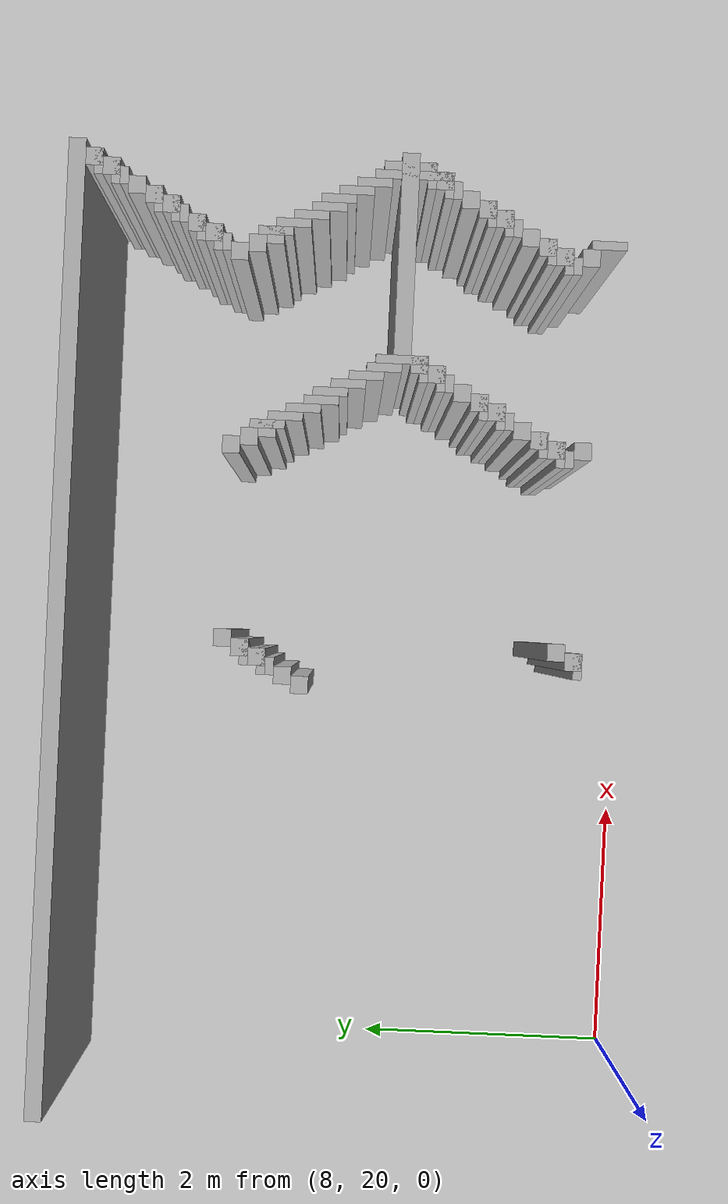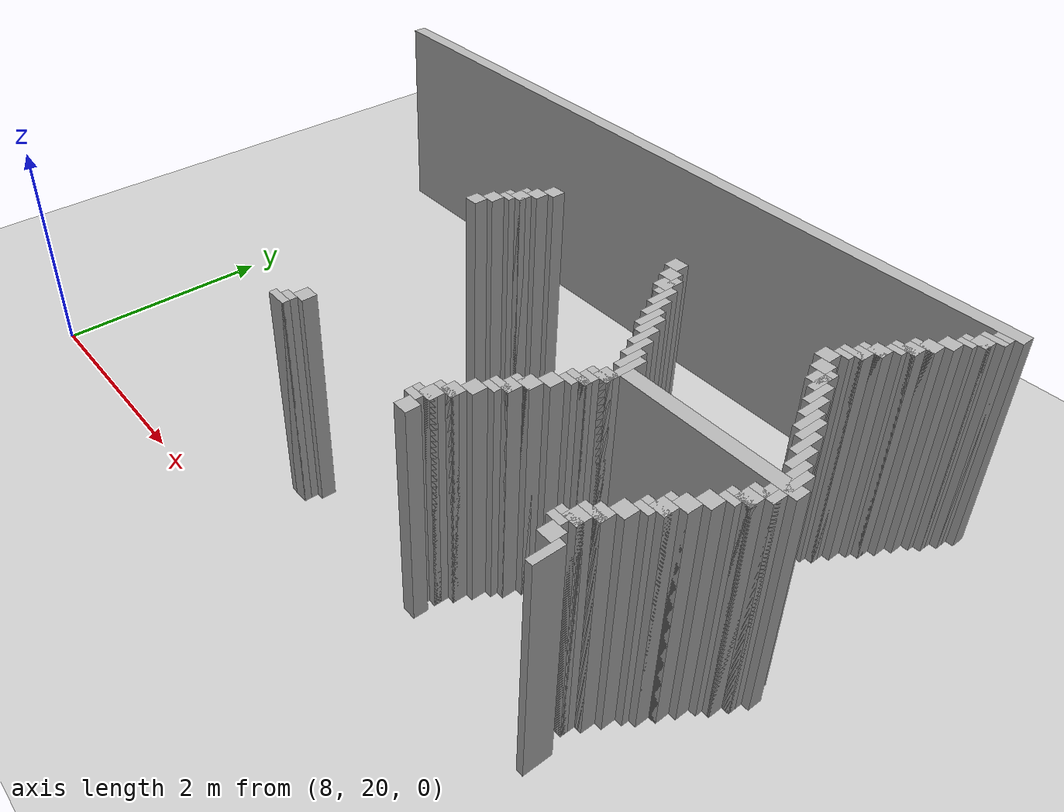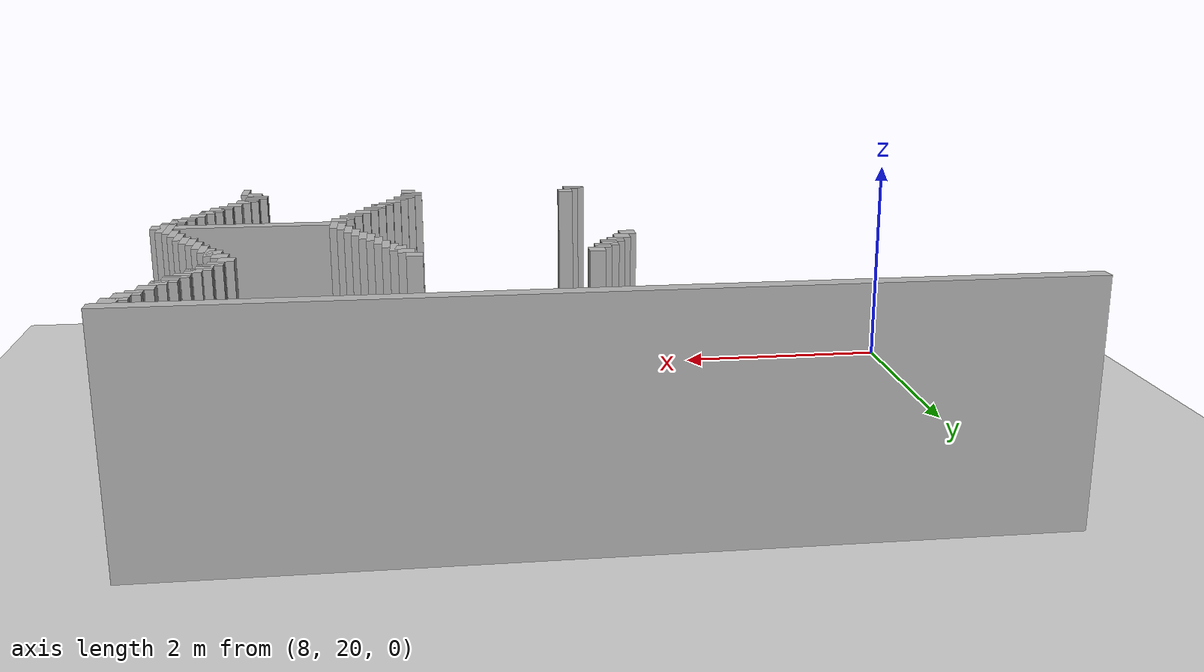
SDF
<sdf version="1.6">
 <world name="slam_world">
  <model name="ground_plane">
   <static>true</static>
   <link name="link">
    <collision name="collision">
     <geometry><plane><normal>0 0 1</normal><size>100 100</size></plane></geometry>
    </collision>
    <visual name="visual">
     <geometry><plane><normal>0 0 1</normal><size>100 100</size></plane></geometry>
     <material>
      <ambient>0.8 0.8 0.8 1</ambient>
      <diffuse>0.8 0.8 0.8 1</diffuse>
      <specular>0.8 0.8 0.8 1</specular>
     </material>
    </visual>
   </link>
  </model>
  <model name="wall_1">
   <static>true</static>
   <pose>11.361702127659573 24.446808510638295 1.0 0 0 0</pose>
   <link name="link">
    <collision name="collision">
     <geometry><box><size>7.148936170212766 0.1276595744680851 2.0</size></box></geometry>
    </collision>
    <visual name="visual">
     <geometry><box><size>7.148936170212766 0.1276595744680851 2.0</size></box></geometry>
     <material><ambient>0.5 0.5 0.5 1</ambient><diffuse>0.7 0.7 0.7 1</diffuse></material>
    </visual>
   </link>
  </model>
  <model name="wall_7">
   <static>true</static>
   <pose>14.808510638297872 24.319148936170212 1.0 0 0 0</pose>
   <link name="link">
    <collision name="collision">
     <geometry><box><size>0.1276595744680851 0.1276595744680851 2.0</size></box></geometry>
    </collision>
    <visual name="visual">
     <geometry><box><size>0.1276595744680851 0.1276595744680851 2.0</size></box></geometry>
     <material><ambient>0.5 0.5 0.5 1</ambient><diffuse>0.7 0.7 0.7 1</diffuse></material>
    </visual>
   </link>
  </model>
  <model name="wall_13">
   <static>true</static>
   <pose>14.77659574468085 24.28723404255319 1.0 0 0 0</pose>
   <link name="link">
    <collision name="collision">
     <geometry><box><size>0.19148936170212766 0.06382978723404255 2.0</size></box></geometry>
    </collision>
    <visual name="visual">
     <geometry><box><size>0.19148936170212766 0.06382978723404255 2.0</size></box></geometry>
     <material><ambient>0.5 0.5 0.5 1</ambient><diffuse>0.7 0.7 0.7 1</diffuse></material>
    </visual>
   </link>
  </model>
  <model name="wall_19">
   <static>true</static>
   <pose>14.744680851063828 24.191489361702125 1.0 0 0 0</pose>
   <link name="link">
    <collision name="collision">
     <geometry><box><size>0.1276595744680851 0.1276595744680851 2.0</size></box></geometry>
    </collision>
    <visual name="visual">
     <geometry><box><size>0.1276595744680851 0.1276595744680851 2.0</size></box></geometry>
     <material><ambient>0.5 0.5 0.5 1</ambient><diffuse>0.7 0.7 0.7 1</diffuse></material>
    </visual>
   </link>
  </model>
  <model name="wall_25">
   <static>true</static>
   <pose>14.712765957446807 24.159574468085104 1.0 0 0 0</pose>
   <link name="link">
    <collision name="collision">
     <geometry><box><size>0.19148936170212766 0.06382978723404255 2.0</size></box></geometry>
    </collision>
    <visual name="visual">
     <geometry><box><size>0.19148936170212766 0.06382978723404255 2.0</size></box></geometry>
     <material><ambient>0.5 0.5 0.5 1</ambient><diffuse>0.7 0.7 0.7 1</diffuse></material>
    </visual>
   </link>
  </model>
  <model name="wall_31">
   <static>true</static>
   <pose>14.680851063829786 24.095744680851062 1.0 0 0 0</pose>
   <link name="link">
    <collision name="collision">
     <geometry><box><size>0.1276595744680851 0.06382978723404255 2.0</size></box></geometry>
    </collision>
    <visual name="visual">
     <geometry><box><size>0.1276595744680851 0.06382978723404255 2.0</size></box></geometry>
     <material><ambient>0.5 0.5 0.5 1</ambient><diffuse>0.7 0.7 0.7 1</diffuse></material>
    </visual>
   </link>
  </model>
  <model name="wall_37">
   <static>true</static>
   <pose>14.617021276595743 23.999999999999996 1.0 0 0 0</pose>
   <link name="link">
    <collision name="collision">
     <geometry><box><size>0.1276595744680851 0.1276595744680851 2.0</size></box></geometry>
    </collision>
    <visual name="visual">
     <geometry><box><size>0.1276595744680851 0.1276595744680851 2.0</size></box></geometry>
     <material><ambient>0.5 0.5 0.5 1</ambient><diffuse>0.7 0.7 0.7 1</diffuse></material>
    </visual>
   </link>
  </model>
  <model name="wall_43">
   <static>true</static>
   <pose>14.553191489361701 23.872340425531913 1.0 0 0 0</pose>
   <link name="link">
    <collision name="collision">
     <geometry><box><size>0.1276595744680851 0.1276595744680851 2.0</size></box></geometry>
    </collision>
    <visual name="visual">
     <geometry><box><size>0.1276595744680851 0.1276595744680851 2.0</size></box></geometry>
     <material><ambient>0.5 0.5 0.5 1</ambient><diffuse>0.7 0.7 0.7 1</diffuse></material>
    </visual>
   </link>
  </model>
  <model name="wall_49">
   <static>true</static>
   <pose>14.52127659574468 23.840425531914892 1.0 0 0 0</pose>
   <link name="link">
    <collision name="collision">
     <geometry><box><size>0.19148936170212766 0.06382978723404255 2.0</size></box></geometry>
    </collision>
    <visual name="visual">
     <geometry><box><size>0.19148936170212766 0.06382978723404255 2.0</size></box></geometry>
     <material><ambient>0.5 0.5 0.5 1</ambient><diffuse>0.7 0.7 0.7 1</diffuse></material>
    </visual>
   </link>
  </model>
  <model name="wall_55">
   <static>true</static>
   <pose>14.489361702127658 23.744680851063826 1.0 0 0 0</pose>
   <link name="link">
    <collision name="collision">
     <geometry><box><size>0.1276595744680851 0.1276595744680851 2.0</size></box></geometry>
    </collision>
    <visual name="visual">
     <geometry><box><size>0.1276595744680851 0.1276595744680851 2.0</size></box></geometry>
     <material><ambient>0.5 0.5 0.5 1</ambient><diffuse>0.7 0.7 0.7 1</diffuse></material>
    </visual>
   </link>
  </model>
  <model name="wall_61">
   <static>true</static>
   <pose>14.457446808510637 23.712765957446805 1.0 0 0 0</pose>
   <link name="link">
    <collision name="collision">
     <geometry><box><size>0.19148936170212766 0.06382978723404255 2.0</size></box></geometry>
    </collision>
    <visual name="visual">
     <geometry><box><size>0.19148936170212766 0.06382978723404255 2.0</size></box></geometry>
     <material><ambient>0.5 0.5 0.5 1</ambient><diffuse>0.7 0.7 0.7 1</diffuse></material>
    </visual>
   </link>
  </model>
  <model name="wall_67">
   <static>true</static>
   <pose>14.425531914893616 23.648936170212764 1.0 0 0 0</pose>
   <link name="link">
    <collision name="collision">
     <geometry><box><size>0.1276595744680851 0.06382978723404255 2.0</size></box></geometry>
    </collision>
    <visual name="visual">
     <geometry><box><size>0.1276595744680851 0.06382978723404255 2.0</size></box></geometry>
     <material><ambient>0.5 0.5 0.5 1</ambient><diffuse>0.7 0.7 0.7 1</diffuse></material>
    </visual>
   </link>
  </model>
  <model name="wall_73">
   <static>true</static>
   <pose>14.361702127659573 23.5531914893617 1.0 0 0 0</pose>
   <link name="link">
    <collision name="collision">
     <geometry><box><size>0.1276595744680851 0.1276595744680851 2.0</size></box></geometry>
    </collision>
    <visual name="visual">
     <geometry><box><size>0.1276595744680851 0.1276595744680851 2.0</size></box></geometry>
     <material><ambient>0.5 0.5 0.5 1</ambient><diffuse>0.7 0.7 0.7 1</diffuse></material>
    </visual>
   </link>
  </model>
  <model name="wall_79">
   <static>true</static>
   <pose>14.329787234042552 23.52127659574468 1.0 0 0 0</pose>
   <link name="link">
    <collision name="collision">
     <geometry><box><size>0.19148936170212766 0.06382978723404255 2.0</size></box></geometry>
    </collision>
    <visual name="visual">
     <geometry><box><size>0.19148936170212766 0.06382978723404255 2.0</size></box></geometry>
     <material><ambient>0.5 0.5 0.5 1</ambient><diffuse>0.7 0.7 0.7 1</diffuse></material>
    </visual>
   </link>
  </model>
  <model name="wall_85">
   <static>true</static>
   <pose>14.297872340425531 23.425531914893615 1.0 0 0 0</pose>
   <link name="link">
    <collision name="collision">
     <geometry><box><size>0.1276595744680851 0.1276595744680851 2.0</size></box></geometry>
    </collision>
    <visual name="visual">
     <geometry><box><size>0.1276595744680851 0.1276595744680851 2.0</size></box></geometry>
     <material><ambient>0.5 0.5 0.5 1</ambient><diffuse>0.7 0.7 0.7 1</diffuse></material>
    </visual>
   </link>
  </model>
  <model name="wall_91">
   <static>true</static>
   <pose>14.265957446808509 23.393617021276594 1.0 0 0 0</pose>
   <link name="link">
    <collision name="collision">
     <geometry><box><size>0.19148936170212766 0.06382978723404255 2.0</size></box></geometry>
    </collision>
    <visual name="visual">
     <geometry><box><size>0.19148936170212766 0.06382978723404255 2.0</size></box></geometry>
     <material><ambient>0.5 0.5 0.5 1</ambient><diffuse>0.7 0.7 0.7 1</diffuse></material>
    </visual>
   </link>
  </model>
  <model name="wall_97">
   <static>true</static>
   <pose>14.234042553191488 23.329787234042552 1.0 0 0 0</pose>
   <link name="link">
    <collision name="collision">
     <geometry><box><size>0.1276595744680851 0.06382978723404255 2.0</size></box></geometry>
    </collision>
    <visual name="visual">
     <geometry><box><size>0.1276595744680851 0.06382978723404255 2.0</size></box></geometry>
     <material><ambient>0.5 0.5 0.5 1</ambient><diffuse>0.7 0.7 0.7 1</diffuse></material>
    </visual>
   </link>
  </model>
  <model name="wall_104">
   <static>true</static>
   <pose>11.361702127659573 23.234042553191486 1.0 0 0 0</pose>
   <link name="link">
    <collision name="collision">
     <geometry><box><size>0.1276595744680851 0.1276595744680851 2.0</size></box></geometry>
    </collision>
    <visual name="visual">
     <geometry><box><size>0.1276595744680851 0.1276595744680851 2.0</size></box></geometry>
     <material><ambient>0.5 0.5 0.5 1</ambient><diffuse>0.7 0.7 0.7 1</diffuse></material>
    </visual>
   </link>
  </model>
  <model name="wall_105">
   <static>true</static>
   <pose>12.76595744680851 23.234042553191486 1.0 0 0 0</pose>
   <link name="link">
    <collision name="collision">
     <geometry><box><size>0.1276595744680851 0.1276595744680851 2.0</size></box></geometry>
    </collision>
    <visual name="visual">
     <geometry><box><size>0.1276595744680851 0.1276595744680851 2.0</size></box></geometry>
     <material><ambient>0.5 0.5 0.5 1</ambient><diffuse>0.7 0.7 0.7 1</diffuse></material>
    </visual>
   </link>
  </model>
  <model name="wall_106">
   <static>true</static>
   <pose>14.170212765957446 23.234042553191486 1.0 0 0 0</pose>
   <link name="link">
    <collision name="collision">
     <geometry><box><size>0.1276595744680851 0.1276595744680851 2.0</size></box></geometry>
    </collision>
    <visual name="visual">
     <geometry><box><size>0.1276595744680851 0.1276595744680851 2.0</size></box></geometry>
     <material><ambient>0.5 0.5 0.5 1</ambient><diffuse>0.7 0.7 0.7 1</diffuse></material>
    </visual>
   </link>
  </model>
  <model name="wall_111">
   <static>true</static>
   <pose>11.297872340425531 23.106382978723403 1.0 0 0 0</pose>
   <link name="link">
    <collision name="collision">
     <geometry><box><size>0.1276595744680851 0.1276595744680851 2.0</size></box></geometry>
    </collision>
    <visual name="visual">
     <geometry><box><size>0.1276595744680851 0.1276595744680851 2.0</size></box></geometry>
     <material><ambient>0.5 0.5 0.5 1</ambient><diffuse>0.7 0.7 0.7 1</diffuse></material>
    </visual>
   </link>
  </model>
  <model name="wall_112">
   <static>true</static>
   <pose>12.829787234042552 23.106382978723403 1.0 0 0 0</pose>
   <link name="link">
    <collision name="collision">
     <geometry><box><size>0.1276595744680851 0.1276595744680851 2.0</size></box></geometry>
    </collision>
    <visual name="visual">
     <geometry><box><size>0.1276595744680851 0.1276595744680851 2.0</size></box></geometry>
     <material><ambient>0.5 0.5 0.5 1</ambient><diffuse>0.7 0.7 0.7 1</diffuse></material>
    </visual>
   </link>
  </model>
  <model name="wall_113">
   <static>true</static>
   <pose>14.234042553191488 23.106382978723403 1.0 0 0 0</pose>
   <link name="link">
    <collision name="collision">
     <geometry><box><size>0.1276595744680851 0.1276595744680851 2.0</size></box></geometry>
    </collision>
    <visual name="visual">
     <geometry><box><size>0.1276595744680851 0.1276595744680851 2.0</size></box></geometry>
     <material><ambient>0.5 0.5 0.5 1</ambient><diffuse>0.7 0.7 0.7 1</diffuse></material>
    </visual>
   </link>
  </model>
  <model name="wall_118">
   <static>true</static>
   <pose>11.26595744680851 23.074468085106382 1.0 0 0 0</pose>
   <link name="link">
    <collision name="collision">
     <geometry><box><size>0.19148936170212766 0.06382978723404255 2.0</size></box></geometry>
    </collision>
    <visual name="visual">
     <geometry><box><size>0.19148936170212766 0.06382978723404255 2.0</size></box></geometry>
     <material><ambient>0.5 0.5 0.5 1</ambient><diffuse>0.7 0.7 0.7 1</diffuse></material>
    </visual>
   </link>
  </model>
  <model name="wall_119">
   <static>true</static>
   <pose>12.925531914893616 22.978723404255316 1.0 0 0 0</pose>
   <link name="link">
    <collision name="collision">
     <geometry><box><size>0.06382978723404255 0.2553191489361702 2.0</size></box></geometry>
    </collision>
    <visual name="visual">
     <geometry><box><size>0.06382978723404255 0.2553191489361702 2.0</size></box></geometry>
     <material><ambient>0.5 0.5 0.5 1</ambient><diffuse>0.7 0.7 0.7 1</diffuse></material>
    </visual>
   </link>
  </model>
  <model name="wall_120">
   <static>true</static>
   <pose>14.329787234042552 22.978723404255316 1.0 0 0 0</pose>
   <link name="link">
    <collision name="collision">
     <geometry><box><size>0.06382978723404255 0.2553191489361702 2.0</size></box></geometry>
    </collision>
    <visual name="visual">
     <geometry><box><size>0.06382978723404255 0.2553191489361702 2.0</size></box></geometry>
     <material><ambient>0.5 0.5 0.5 1</ambient><diffuse>0.7 0.7 0.7 1</diffuse></material>
    </visual>
   </link>
  </model>
  <model name="wall_126">
   <static>true</static>
   <pose>11.234042553191488 22.978723404255316 1.0 0 0 0</pose>
   <link name="link">
    <collision name="collision">
     <geometry><box><size>0.1276595744680851 0.1276595744680851 2.0</size></box></geometry>
    </collision>
    <visual name="visual">
     <geometry><box><size>0.1276595744680851 0.1276595744680851 2.0</size></box></geometry>
     <material><ambient>0.5 0.5 0.5 1</ambient><diffuse>0.7 0.7 0.7 1</diffuse></material>
    </visual>
   </link>
  </model>
  <model name="wall_127">
   <static>true</static>
   <pose>12.893617021276595 22.978723404255316 1.0 0 0 0</pose>
   <link name="link">
    <collision name="collision">
     <geometry><box><size>0.1276595744680851 0.1276595744680851 2.0</size></box></geometry>
    </collision>
    <visual name="visual">
     <geometry><box><size>0.1276595744680851 0.1276595744680851 2.0</size></box></geometry>
     <material><ambient>0.5 0.5 0.5 1</ambient><diffuse>0.7 0.7 0.7 1</diffuse></material>
    </visual>
   </link>
  </model>
  <model name="wall_128">
   <static>true</static>
   <pose>14.297872340425531 22.978723404255316 1.0 0 0 0</pose>
   <link name="link">
    <collision name="collision">
     <geometry><box><size>0.1276595744680851 0.1276595744680851 2.0</size></box></geometry>
    </collision>
    <visual name="visual">
     <geometry><box><size>0.1276595744680851 0.1276595744680851 2.0</size></box></geometry>
     <material><ambient>0.5 0.5 0.5 1</ambient><diffuse>0.7 0.7 0.7 1</diffuse></material>
    </visual>
   </link>
  </model>
  <model name="wall_134">
   <static>true</static>
   <pose>11.202127659574467 22.946808510638295 1.0 0 0 0</pose>
   <link name="link">
    <collision name="collision">
     <geometry><box><size>0.19148936170212766 0.06382978723404255 2.0</size></box></geometry>
    </collision>
    <visual name="visual">
     <geometry><box><size>0.19148936170212766 0.06382978723404255 2.0</size></box></geometry>
     <material><ambient>0.5 0.5 0.5 1</ambient><diffuse>0.7 0.7 0.7 1</diffuse></material>
    </visual>
   </link>
  </model>
  <model name="wall_135">
   <static>true</static>
   <pose>12.989361702127658 22.851063829787233 1.0 0 0 0</pose>
   <link name="link">
    <collision name="collision">
     <geometry><box><size>0.06382978723404255 0.2553191489361702 2.0</size></box></geometry>
    </collision>
    <visual name="visual">
     <geometry><box><size>0.06382978723404255 0.2553191489361702 2.0</size></box></geometry>
     <material><ambient>0.5 0.5 0.5 1</ambient><diffuse>0.7 0.7 0.7 1</diffuse></material>
    </visual>
   </link>
  </model>
  <model name="wall_136">
   <static>true</static>
   <pose>14.393617021276595 22.851063829787233 1.0 0 0 0</pose>
   <link name="link">
    <collision name="collision">
     <geometry><box><size>0.06382978723404255 0.2553191489361702 2.0</size></box></geometry>
    </collision>
    <visual name="visual">
     <geometry><box><size>0.06382978723404255 0.2553191489361702 2.0</size></box></geometry>
     <material><ambient>0.5 0.5 0.5 1</ambient><diffuse>0.7 0.7 0.7 1</diffuse></material>
    </visual>
   </link>
  </model>
  <model name="wall_139">
   <static>true</static>
   <pose>11.170212765957446 22.882978723404253 1.0 0 0 0</pose>
   <link name="link">
    <collision name="collision">
     <geometry><box><size>0.1276595744680851 0.06382978723404255 2.0</size></box></geometry>
    </collision>
    <visual name="visual">
     <geometry><box><size>0.1276595744680851 0.06382978723404255 2.0</size></box></geometry>
     <material><ambient>0.5 0.5 0.5 1</ambient><diffuse>0.7 0.7 0.7 1</diffuse></material>
    </visual>
   </link>
  </model>
  <model name="wall_145">
   <static>true</static>
   <pose>11.106382978723403 22.78723404255319 1.0 0 0 0</pose>
   <link name="link">
    <collision name="collision">
     <geometry><box><size>0.1276595744680851 0.1276595744680851 2.0</size></box></geometry>
    </collision>
    <visual name="visual">
     <geometry><box><size>0.1276595744680851 0.1276595744680851 2.0</size></box></geometry>
     <material><ambient>0.5 0.5 0.5 1</ambient><diffuse>0.7 0.7 0.7 1</diffuse></material>
    </visual>
   </link>
  </model>
  <model name="wall_146">
   <static>true</static>
   <pose>13.053191489361701 22.723404255319146 1.0 0 0 0</pose>
   <link name="link">
    <collision name="collision">
     <geometry><box><size>0.06382978723404255 0.2553191489361702 2.0</size></box></geometry>
    </collision>
    <visual name="visual">
     <geometry><box><size>0.06382978723404255 0.2553191489361702 2.0</size></box></geometry>
     <material><ambient>0.5 0.5 0.5 1</ambient><diffuse>0.7 0.7 0.7 1</diffuse></material>
    </visual>
   </link>
  </model>
  <model name="wall_147">
   <static>true</static>
   <pose>14.457446808510637 22.723404255319146 1.0 0 0 0</pose>
   <link name="link">
    <collision name="collision">
     <geometry><box><size>0.06382978723404255 0.2553191489361702 2.0</size></box></geometry>
    </collision>
    <visual name="visual">
     <geometry><box><size>0.06382978723404255 0.2553191489361702 2.0</size></box></geometry>
     <material><ambient>0.5 0.5 0.5 1</ambient><diffuse>0.7 0.7 0.7 1</diffuse></material>
    </visual>
   </link>
  </model>
  <model name="wall_153">
   <static>true</static>
   <pose>11.042553191489361 22.659574468085104 1.0 0 0 0</pose>
   <link name="link">
    <collision name="collision">
     <geometry><box><size>0.1276595744680851 0.1276595744680851 2.0</size></box></geometry>
    </collision>
    <visual name="visual">
     <geometry><box><size>0.1276595744680851 0.1276595744680851 2.0</size></box></geometry>
     <material><ambient>0.5 0.5 0.5 1</ambient><diffuse>0.7 0.7 0.7 1</diffuse></material>
    </visual>
   </link>
  </model>
  <model name="wall_154">
   <static>true</static>
   <pose>13.117021276595743 22.595744680851062 1.0 0 0 0</pose>
   <link name="link">
    <collision name="collision">
     <geometry><box><size>0.06382978723404255 0.2553191489361702 2.0</size></box></geometry>
    </collision>
    <visual name="visual">
     <geometry><box><size>0.06382978723404255 0.2553191489361702 2.0</size></box></geometry>
     <material><ambient>0.5 0.5 0.5 1</ambient><diffuse>0.7 0.7 0.7 1</diffuse></material>
    </visual>
   </link>
  </model>
  <model name="wall_155">
   <static>true</static>
   <pose>14.52127659574468 22.595744680851062 1.0 0 0 0</pose>
   <link name="link">
    <collision name="collision">
     <geometry><box><size>0.06382978723404255 0.2553191489361702 2.0</size></box></geometry>
    </collision>
    <visual name="visual">
     <geometry><box><size>0.06382978723404255 0.2553191489361702 2.0</size></box></geometry>
     <material><ambient>0.5 0.5 0.5 1</ambient><diffuse>0.7 0.7 0.7 1</diffuse></material>
    </visual>
   </link>
  </model>
  <model name="wall_162">
   <static>true</static>
   <pose>13.180851063829786 22.53191489361702 1.0 0 0 0</pose>
   <link name="link">
    <collision name="collision">
     <geometry><box><size>0.06382978723404255 0.2553191489361702 2.0</size></box></geometry>
    </collision>
    <visual name="visual">
     <geometry><box><size>0.06382978723404255 0.2553191489361702 2.0</size></box></geometry>
     <material><ambient>0.5 0.5 0.5 1</ambient><diffuse>0.7 0.7 0.7 1</diffuse></material>
    </visual>
   </link>
  </model>
  <model name="wall_163">
   <static>true</static>
   <pose>14.585106382978722 22.53191489361702 1.0 0 0 0</pose>
   <link name="link">
    <collision name="collision">
     <geometry><box><size>0.06382978723404255 0.2553191489361702 2.0</size></box></geometry>
    </collision>
    <visual name="visual">
     <geometry><box><size>0.06382978723404255 0.2553191489361702 2.0</size></box></geometry>
     <material><ambient>0.5 0.5 0.5 1</ambient><diffuse>0.7 0.7 0.7 1</diffuse></material>
    </visual>
   </link>
  </model>
  <model name="wall_172">
   <static>true</static>
   <pose>13.244680851063828 22.404255319148934 1.0 0 0 0</pose>
   <link name="link">
    <collision name="collision">
     <geometry><box><size>0.06382978723404255 0.2553191489361702 2.0</size></box></geometry>
    </collision>
    <visual name="visual">
     <geometry><box><size>0.06382978723404255 0.2553191489361702 2.0</size></box></geometry>
     <material><ambient>0.5 0.5 0.5 1</ambient><diffuse>0.7 0.7 0.7 1</diffuse></material>
    </visual>
   </link>
  </model>
  <model name="wall_173">
   <static>true</static>
   <pose>14.648936170212766 22.404255319148934 1.0 0 0 0</pose>
   <link name="link">
    <collision name="collision">
     <geometry><box><size>0.06382978723404255 0.2553191489361702 2.0</size></box></geometry>
    </collision>
    <visual name="visual">
     <geometry><box><size>0.06382978723404255 0.2553191489361702 2.0</size></box></geometry>
     <material><ambient>0.5 0.5 0.5 1</ambient><diffuse>0.7 0.7 0.7 1</diffuse></material>
    </visual>
   </link>
  </model>
  <model name="wall_182">
   <static>true</static>
   <pose>13.308510638297872 22.27659574468085 1.0 0 0 0</pose>
   <link name="link">
    <collision name="collision">
     <geometry><box><size>0.06382978723404255 0.2553191489361702 2.0</size></box></geometry>
    </collision>
    <visual name="visual">
     <geometry><box><size>0.06382978723404255 0.2553191489361702 2.0</size></box></geometry>
     <material><ambient>0.5 0.5 0.5 1</ambient><diffuse>0.7 0.7 0.7 1</diffuse></material>
    </visual>
   </link>
  </model>
  <model name="wall_183">
   <static>true</static>
   <pose>14.712765957446807 22.27659574468085 1.0 0 0 0</pose>
   <link name="link">
    <collision name="collision">
     <geometry><box><size>0.06382978723404255 0.2553191489361702 2.0</size></box></geometry>
    </collision>
    <visual name="visual">
     <geometry><box><size>0.06382978723404255 0.2553191489361702 2.0</size></box></geometry>
     <material><ambient>0.5 0.5 0.5 1</ambient><diffuse>0.7 0.7 0.7 1</diffuse></material>
    </visual>
   </link>
  </model>
  <model name="wall_192">
   <static>true</static>
   <pose>13.372340425531913 22.148936170212764 1.0 0 0 0</pose>
   <link name="link">
    <collision name="collision">
     <geometry><box><size>0.06382978723404255 0.2553191489361702 2.0</size></box></geometry>
    </collision>
    <visual name="visual">
     <geometry><box><size>0.06382978723404255 0.2553191489361702 2.0</size></box></geometry>
     <material><ambient>0.5 0.5 0.5 1</ambient><diffuse>0.7 0.7 0.7 1</diffuse></material>
    </visual>
   </link>
  </model>
  <model name="wall_193">
   <static>true</static>
   <pose>14.77659574468085 21.989361702127656 1.0 0 0 0</pose>
   <link name="link">
    <collision name="collision">
     <geometry><box><size>0.06382978723404255 0.5744680851063829 2.0</size></box></geometry>
    </collision>
    <visual name="visual">
     <geometry><box><size>0.06382978723404255 0.5744680851063829 2.0</size></box></geometry>
     <material><ambient>0.5 0.5 0.5 1</ambient><diffuse>0.7 0.7 0.7 1</diffuse></material>
    </visual>
   </link>
  </model>
  <model name="wall_200">
   <static>true</static>
   <pose>13.436170212765957 22.02127659574468 1.0 0 0 0</pose>
   <link name="link">
    <collision name="collision">
     <geometry><box><size>0.06382978723404255 0.3829787234042553 2.0</size></box></geometry>
    </collision>
    <visual name="visual">
     <geometry><box><size>0.06382978723404255 0.3829787234042553 2.0</size></box></geometry>
     <material><ambient>0.5 0.5 0.5 1</ambient><diffuse>0.7 0.7 0.7 1</diffuse></material>
    </visual>
   </link>
  </model>
  <model name="wall_201">
   <static>true</static>
   <pose>14.840425531914892 22.02127659574468 1.0 0 0 0</pose>
   <link name="link">
    <collision name="collision">
     <geometry><box><size>0.06382978723404255 0.3829787234042553 2.0</size></box></geometry>
    </collision>
    <visual name="visual">
     <geometry><box><size>0.06382978723404255 0.3829787234042553 2.0</size></box></geometry>
     <material><ambient>0.5 0.5 0.5 1</ambient><diffuse>0.7 0.7 0.7 1</diffuse></material>
    </visual>
   </link>
  </model>
  <model name="wall_210">
   <static>true</static>
   <pose>14.202127659574467 22.02127659574468 1.0 0 0 0</pose>
   <link name="link">
    <collision name="collision">
     <geometry><box><size>1.4680851063829785 0.1276595744680851 2.0</size></box></geometry>
    </collision>
    <visual name="visual">
     <geometry><box><size>1.4680851063829785 0.1276595744680851 2.0</size></box></geometry>
     <material><ambient>0.5 0.5 0.5 1</ambient><diffuse>0.7 0.7 0.7 1</diffuse></material>
    </visual>
   </link>
  </model>
  <model name="wall_217">
   <static>true</static>
   <pose>13.404255319148936 21.893617021276594 1.0 0 0 0</pose>
   <link name="link">
    <collision name="collision">
     <geometry><box><size>0.1276595744680851 0.1276595744680851 2.0</size></box></geometry>
    </collision>
    <visual name="visual">
     <geometry><box><size>0.1276595744680851 0.1276595744680851 2.0</size></box></geometry>
     <material><ambient>0.5 0.5 0.5 1</ambient><diffuse>0.7 0.7 0.7 1</diffuse></material>
    </visual>
   </link>
  </model>
  <model name="wall_223">
   <static>true</static>
   <pose>13.372340425531913 21.861702127659573 1.0 0 0 0</pose>
   <link name="link">
    <collision name="collision">
     <geometry><box><size>0.19148936170212766 0.06382978723404255 2.0</size></box></geometry>
    </collision>
    <visual name="visual">
     <geometry><box><size>0.19148936170212766 0.06382978723404255 2.0</size></box></geometry>
     <material><ambient>0.5 0.5 0.5 1</ambient><diffuse>0.7 0.7 0.7 1</diffuse></material>
    </visual>
   </link>
  </model>
  <model name="wall_224">
   <static>true</static>
   <pose>14.77659574468085 21.861702127659573 1.0 0 0 0</pose>
   <link name="link">
    <collision name="collision">
     <geometry><box><size>0.19148936170212766 0.06382978723404255 2.0</size></box></geometry>
    </collision>
    <visual name="visual">
     <geometry><box><size>0.19148936170212766 0.06382978723404255 2.0</size></box></geometry>
     <material><ambient>0.5 0.5 0.5 1</ambient><diffuse>0.7 0.7 0.7 1</diffuse></material>
    </visual>
   </link>
  </model>
  <model name="wall_230">
   <static>true</static>
   <pose>13.340425531914892 21.76595744680851 1.0 0 0 0</pose>
   <link name="link">
    <collision name="collision">
     <geometry><box><size>0.1276595744680851 0.1276595744680851 2.0</size></box></geometry>
    </collision>
    <visual name="visual">
     <geometry><box><size>0.1276595744680851 0.1276595744680851 2.0</size></box></geometry>
     <material><ambient>0.5 0.5 0.5 1</ambient><diffuse>0.7 0.7 0.7 1</diffuse></material>
    </visual>
   </link>
  </model>
  <model name="wall_231">
   <static>true</static>
   <pose>14.744680851063828 21.76595744680851 1.0 0 0 0</pose>
   <link name="link">
    <collision name="collision">
     <geometry><box><size>0.1276595744680851 0.1276595744680851 2.0</size></box></geometry>
    </collision>
    <visual name="visual">
     <geometry><box><size>0.1276595744680851 0.1276595744680851 2.0</size></box></geometry>
     <material><ambient>0.5 0.5 0.5 1</ambient><diffuse>0.7 0.7 0.7 1</diffuse></material>
    </visual>
   </link>
  </model>
  <model name="wall_238">
   <static>true</static>
   <pose>13.308510638297872 21.734042553191486 1.0 0 0 0</pose>
   <link name="link">
    <collision name="collision">
     <geometry><box><size>0.19148936170212766 0.06382978723404255 2.0</size></box></geometry>
    </collision>
    <visual name="visual">
     <geometry><box><size>0.19148936170212766 0.06382978723404255 2.0</size></box></geometry>
     <material><ambient>0.5 0.5 0.5 1</ambient><diffuse>0.7 0.7 0.7 1</diffuse></material>
    </visual>
   </link>
  </model>
  <model name="wall_239">
   <static>true</static>
   <pose>14.712765957446807 21.734042553191486 1.0 0 0 0</pose>
   <link name="link">
    <collision name="collision">
     <geometry><box><size>0.19148936170212766 0.06382978723404255 2.0</size></box></geometry>
    </collision>
    <visual name="visual">
     <geometry><box><size>0.19148936170212766 0.06382978723404255 2.0</size></box></geometry>
     <material><ambient>0.5 0.5 0.5 1</ambient><diffuse>0.7 0.7 0.7 1</diffuse></material>
    </visual>
   </link>
  </model>
  <model name="wall_243">
   <static>true</static>
   <pose>13.27659574468085 21.670212765957444 1.0 0 0 0</pose>
   <link name="link">
    <collision name="collision">
     <geometry><box><size>0.1276595744680851 0.06382978723404255 2.0</size></box></geometry>
    </collision>
    <visual name="visual">
     <geometry><box><size>0.1276595744680851 0.06382978723404255 2.0</size></box></geometry>
     <material><ambient>0.5 0.5 0.5 1</ambient><diffuse>0.7 0.7 0.7 1</diffuse></material>
    </visual>
   </link>
  </model>
  <model name="wall_244">
   <static>true</static>
   <pose>14.680851063829786 21.670212765957444 1.0 0 0 0</pose>
   <link name="link">
    <collision name="collision">
     <geometry><box><size>0.1276595744680851 0.06382978723404255 2.0</size></box></geometry>
    </collision>
    <visual name="visual">
     <geometry><box><size>0.1276595744680851 0.06382978723404255 2.0</size></box></geometry>
     <material><ambient>0.5 0.5 0.5 1</ambient><diffuse>0.7 0.7 0.7 1</diffuse></material>
    </visual>
   </link>
  </model>
  <model name="wall_251">
   <static>true</static>
   <pose>13.212765957446807 21.574468085106382 1.0 0 0 0</pose>
   <link name="link">
    <collision name="collision">
     <geometry><box><size>0.1276595744680851 0.1276595744680851 2.0</size></box></geometry>
    </collision>
    <visual name="visual">
     <geometry><box><size>0.1276595744680851 0.1276595744680851 2.0</size></box></geometry>
     <material><ambient>0.5 0.5 0.5 1</ambient><diffuse>0.7 0.7 0.7 1</diffuse></material>
    </visual>
   </link>
  </model>
  <model name="wall_252">
   <static>true</static>
   <pose>14.617021276595743 21.574468085106382 1.0 0 0 0</pose>
   <link name="link">
    <collision name="collision">
     <geometry><box><size>0.1276595744680851 0.1276595744680851 2.0</size></box></geometry>
    </collision>
    <visual name="visual">
     <geometry><box><size>0.1276595744680851 0.1276595744680851 2.0</size></box></geometry>
     <material><ambient>0.5 0.5 0.5 1</ambient><diffuse>0.7 0.7 0.7 1</diffuse></material>
    </visual>
   </link>
  </model>
  <model name="wall_259">
   <static>true</static>
   <pose>13.148936170212766 21.446808510638295 1.0 0 0 0</pose>
   <link name="link">
    <collision name="collision">
     <geometry><box><size>0.1276595744680851 0.1276595744680851 2.0</size></box></geometry>
    </collision>
    <visual name="visual">
     <geometry><box><size>0.1276595744680851 0.1276595744680851 2.0</size></box></geometry>
     <material><ambient>0.5 0.5 0.5 1</ambient><diffuse>0.7 0.7 0.7 1</diffuse></material>
    </visual>
   </link>
  </model>
  <model name="wall_260">
   <static>true</static>
   <pose>14.553191489361701 21.446808510638295 1.0 0 0 0</pose>
   <link name="link">
    <collision name="collision">
     <geometry><box><size>0.1276595744680851 0.1276595744680851 2.0</size></box></geometry>
    </collision>
    <visual name="visual">
     <geometry><box><size>0.1276595744680851 0.1276595744680851 2.0</size></box></geometry>
     <material><ambient>0.5 0.5 0.5 1</ambient><diffuse>0.7 0.7 0.7 1</diffuse></material>
    </visual>
   </link>
  </model>
  <model name="wall_267">
   <static>true</static>
   <pose>13.117021276595743 21.414893617021274 1.0 0 0 0</pose>
   <link name="link">
    <collision name="collision">
     <geometry><box><size>0.19148936170212766 0.06382978723404255 2.0</size></box></geometry>
    </collision>
    <visual name="visual">
     <geometry><box><size>0.19148936170212766 0.06382978723404255 2.0</size></box></geometry>
     <material><ambient>0.5 0.5 0.5 1</ambient><diffuse>0.7 0.7 0.7 1</diffuse></material>
    </visual>
   </link>
  </model>
  <model name="wall_268">
   <static>true</static>
   <pose>14.52127659574468 21.414893617021274 1.0 0 0 0</pose>
   <link name="link">
    <collision name="collision">
     <geometry><box><size>0.19148936170212766 0.06382978723404255 2.0</size></box></geometry>
    </collision>
    <visual name="visual">
     <geometry><box><size>0.19148936170212766 0.06382978723404255 2.0</size></box></geometry>
     <material><ambient>0.5 0.5 0.5 1</ambient><diffuse>0.7 0.7 0.7 1</diffuse></material>
    </visual>
   </link>
  </model>
  <model name="wall_271">
   <static>true</static>
   <pose>13.085106382978722 21.319148936170212 1.0 0 0 0</pose>
   <link name="link">
    <collision name="collision">
     <geometry><box><size>0.1276595744680851 0.1276595744680851 2.0</size></box></geometry>
    </collision>
    <visual name="visual">
     <geometry><box><size>0.1276595744680851 0.1276595744680851 2.0</size></box></geometry>
     <material><ambient>0.5 0.5 0.5 1</ambient><diffuse>0.7 0.7 0.7 1</diffuse></material>
    </visual>
   </link>
  </model>
  <model name="wall_272">
   <static>true</static>
   <pose>14.489361702127658 21.319148936170212 1.0 0 0 0</pose>
   <link name="link">
    <collision name="collision">
     <geometry><box><size>0.1276595744680851 0.1276595744680851 2.0</size></box></geometry>
    </collision>
    <visual name="visual">
     <geometry><box><size>0.1276595744680851 0.1276595744680851 2.0</size></box></geometry>
     <material><ambient>0.5 0.5 0.5 1</ambient><diffuse>0.7 0.7 0.7 1</diffuse></material>
    </visual>
   </link>
  </model>
  <model name="wall_279">
   <static>true</static>
   <pose>13.053191489361701 21.28723404255319 1.0 0 0 0</pose>
   <link name="link">
    <collision name="collision">
     <geometry><box><size>0.19148936170212766 0.06382978723404255 2.0</size></box></geometry>
    </collision>
    <visual name="visual">
     <geometry><box><size>0.19148936170212766 0.06382978723404255 2.0</size></box></geometry>
     <material><ambient>0.5 0.5 0.5 1</ambient><diffuse>0.7 0.7 0.7 1</diffuse></material>
    </visual>
   </link>
  </model>
  <model name="wall_280">
   <static>true</static>
   <pose>14.457446808510637 21.28723404255319 1.0 0 0 0</pose>
   <link name="link">
    <collision name="collision">
     <geometry><box><size>0.19148936170212766 0.06382978723404255 2.0</size></box></geometry>
    </collision>
    <visual name="visual">
     <geometry><box><size>0.19148936170212766 0.06382978723404255 2.0</size></box></geometry>
     <material><ambient>0.5 0.5 0.5 1</ambient><diffuse>0.7 0.7 0.7 1</diffuse></material>
    </visual>
   </link>
  </model>
  <model name="wall_283">
   <static>true</static>
   <pose>13.02127659574468 21.223404255319146 1.0 0 0 0</pose>
   <link name="link">
    <collision name="collision">
     <geometry><box><size>0.1276595744680851 0.06382978723404255 2.0</size></box></geometry>
    </collision>
    <visual name="visual">
     <geometry><box><size>0.1276595744680851 0.06382978723404255 2.0</size></box></geometry>
     <material><ambient>0.5 0.5 0.5 1</ambient><diffuse>0.7 0.7 0.7 1</diffuse></material>
    </visual>
   </link>
  </model>
  <model name="wall_284">
   <static>true</static>
   <pose>14.425531914893616 21.223404255319146 1.0 0 0 0</pose>
   <link name="link">
    <collision name="collision">
     <geometry><box><size>0.1276595744680851 0.06382978723404255 2.0</size></box></geometry>
    </collision>
    <visual name="visual">
     <geometry><box><size>0.1276595744680851 0.06382978723404255 2.0</size></box></geometry>
     <material><ambient>0.5 0.5 0.5 1</ambient><diffuse>0.7 0.7 0.7 1</diffuse></material>
    </visual>
   </link>
  </model>
  <model name="wall_291">
   <static>true</static>
   <pose>12.957446808510637 21.127659574468083 1.0 0 0 0</pose>
   <link name="link">
    <collision name="collision">
     <geometry><box><size>0.1276595744680851 0.1276595744680851 2.0</size></box></geometry>
    </collision>
    <visual name="visual">
     <geometry><box><size>0.1276595744680851 0.1276595744680851 2.0</size></box></geometry>
     <material><ambient>0.5 0.5 0.5 1</ambient><diffuse>0.7 0.7 0.7 1</diffuse></material>
    </visual>
   </link>
  </model>
  <model name="wall_292">
   <static>true</static>
   <pose>14.361702127659573 21.127659574468083 1.0 0 0 0</pose>
   <link name="link">
    <collision name="collision">
     <geometry><box><size>0.1276595744680851 0.1276595744680851 2.0</size></box></geometry>
    </collision>
    <visual name="visual">
     <geometry><box><size>0.1276595744680851 0.1276595744680851 2.0</size></box></geometry>
     <material><ambient>0.5 0.5 0.5 1</ambient><diffuse>0.7 0.7 0.7 1</diffuse></material>
    </visual>
   </link>
  </model>
  <model name="wall_299">
   <static>true</static>
   <pose>12.893617021276595 21.0 1.0 0 0 0</pose>
   <link name="link">
    <collision name="collision">
     <geometry><box><size>0.1276595744680851 0.1276595744680851 2.0</size></box></geometry>
    </collision>
    <visual name="visual">
     <geometry><box><size>0.1276595744680851 0.1276595744680851 2.0</size></box></geometry>
     <material><ambient>0.5 0.5 0.5 1</ambient><diffuse>0.7 0.7 0.7 1</diffuse></material>
    </visual>
   </link>
  </model>
  <model name="wall_300">
   <static>true</static>
   <pose>14.297872340425531 21.0 1.0 0 0 0</pose>
   <link name="link">
    <collision name="collision">
     <geometry><box><size>0.1276595744680851 0.1276595744680851 2.0</size></box></geometry>
    </collision>
    <visual name="visual">
     <geometry><box><size>0.1276595744680851 0.1276595744680851 2.0</size></box></geometry>
     <material><ambient>0.5 0.5 0.5 1</ambient><diffuse>0.7 0.7 0.7 1</diffuse></material>
    </visual>
   </link>
  </model>
  <model name="wall_307">
   <static>true</static>
   <pose>12.861702127659573 20.968085106382976 1.0 0 0 0</pose>
   <link name="link">
    <collision name="collision">
     <geometry><box><size>0.19148936170212766 0.06382978723404255 2.0</size></box></geometry>
    </collision>
    <visual name="visual">
     <geometry><box><size>0.19148936170212766 0.06382978723404255 2.0</size></box></geometry>
     <material><ambient>0.5 0.5 0.5 1</ambient><diffuse>0.7 0.7 0.7 1</diffuse></material>
    </visual>
   </link>
  </model>
  <model name="wall_308">
   <static>true</static>
   <pose>14.265957446808509 20.968085106382976 1.0 0 0 0</pose>
   <link name="link">
    <collision name="collision">
     <geometry><box><size>0.19148936170212766 0.06382978723404255 2.0</size></box></geometry>
    </collision>
    <visual name="visual">
     <geometry><box><size>0.19148936170212766 0.06382978723404255 2.0</size></box></geometry>
     <material><ambient>0.5 0.5 0.5 1</ambient><diffuse>0.7 0.7 0.7 1</diffuse></material>
    </visual>
   </link>
  </model>
  <model name="wall_311">
   <static>true</static>
   <pose>12.829787234042552 20.872340425531913 1.0 0 0 0</pose>
   <link name="link">
    <collision name="collision">
     <geometry><box><size>0.1276595744680851 0.1276595744680851 2.0</size></box></geometry>
    </collision>
    <visual name="visual">
     <geometry><box><size>0.1276595744680851 0.1276595744680851 2.0</size></box></geometry>
     <material><ambient>0.5 0.5 0.5 1</ambient><diffuse>0.7 0.7 0.7 1</diffuse></material>
    </visual>
   </link>
  </model>
  <model name="wall_312">
   <static>true</static>
   <pose>14.234042553191488 20.872340425531913 1.0 0 0 0</pose>
   <link name="link">
    <collision name="collision">
     <geometry><box><size>0.1276595744680851 0.1276595744680851 2.0</size></box></geometry>
    </collision>
    <visual name="visual">
     <geometry><box><size>0.1276595744680851 0.1276595744680851 2.0</size></box></geometry>
     <material><ambient>0.5 0.5 0.5 1</ambient><diffuse>0.7 0.7 0.7 1</diffuse></material>
    </visual>
   </link>
  </model>
  <model name="wall_319">
   <static>true</static>
   <pose>11.361702127659573 20.80851063829787 1.0 0 0 0</pose>
   <link name="link">
    <collision name="collision">
     <geometry><box><size>0.1276595744680851 0.1276595744680851 2.0</size></box></geometry>
    </collision>
    <visual name="visual">
     <geometry><box><size>0.1276595744680851 0.1276595744680851 2.0</size></box></geometry>
     <material><ambient>0.5 0.5 0.5 1</ambient><diffuse>0.7 0.7 0.7 1</diffuse></material>
    </visual>
   </link>
  </model>
  <model name="wall_320">
   <static>true</static>
   <pose>12.797872340425531 20.840425531914892 1.0 0 0 0</pose>
   <link name="link">
    <collision name="collision">
     <geometry><box><size>0.19148936170212766 0.06382978723404255 2.0</size></box></geometry>
    </collision>
    <visual name="visual">
     <geometry><box><size>0.19148936170212766 0.06382978723404255 2.0</size></box></geometry>
     <material><ambient>0.5 0.5 0.5 1</ambient><diffuse>0.7 0.7 0.7 1</diffuse></material>
    </visual>
   </link>
  </model>
  <model name="wall_321">
   <static>true</static>
   <pose>14.202127659574467 20.840425531914892 1.0 0 0 0</pose>
   <link name="link">
    <collision name="collision">
     <geometry><box><size>0.19148936170212766 0.06382978723404255 2.0</size></box></geometry>
    </collision>
    <visual name="visual">
     <geometry><box><size>0.19148936170212766 0.06382978723404255 2.0</size></box></geometry>
     <material><ambient>0.5 0.5 0.5 1</ambient><diffuse>0.7 0.7 0.7 1</diffuse></material>
    </visual>
   </link>
  </model>
  <model name="wall_324">
   <static>true</static>
   <pose>12.76595744680851 20.77659574468085 1.0 0 0 0</pose>
   <link name="link">
    <collision name="collision">
     <geometry><box><size>0.1276595744680851 0.06382978723404255 2.0</size></box></geometry>
    </collision>
    <visual name="visual">
     <geometry><box><size>0.1276595744680851 0.06382978723404255 2.0</size></box></geometry>
     <material><ambient>0.5 0.5 0.5 1</ambient><diffuse>0.7 0.7 0.7 1</diffuse></material>
    </visual>
   </link>
  </model>
  <model name="wall_325">
   <static>true</static>
   <pose>14.170212765957446 20.77659574468085 1.0 0 0 0</pose>
   <link name="link">
    <collision name="collision">
     <geometry><box><size>0.1276595744680851 0.06382978723404255 2.0</size></box></geometry>
    </collision>
    <visual name="visual">
     <geometry><box><size>0.1276595744680851 0.06382978723404255 2.0</size></box></geometry>
     <material><ambient>0.5 0.5 0.5 1</ambient><diffuse>0.7 0.7 0.7 1</diffuse></material>
    </visual>
   </link>
  </model>
  <model name="wall_331">
   <static>true</static>
   <pose>11.297872340425531 20.680851063829785 1.0 0 0 0</pose>
   <link name="link">
    <collision name="collision">
     <geometry><box><size>0.1276595744680851 0.1276595744680851 2.0</size></box></geometry>
    </collision>
    <visual name="visual">
     <geometry><box><size>0.1276595744680851 0.1276595744680851 2.0</size></box></geometry>
     <material><ambient>0.5 0.5 0.5 1</ambient><diffuse>0.7 0.7 0.7 1</diffuse></material>
    </visual>
   </link>
  </model>
  <model name="wall_332">
   <static>true</static>
   <pose>12.829787234042552 20.680851063829785 1.0 0 0 0</pose>
   <link name="link">
    <collision name="collision">
     <geometry><box><size>0.1276595744680851 0.1276595744680851 2.0</size></box></geometry>
    </collision>
    <visual name="visual">
     <geometry><box><size>0.1276595744680851 0.1276595744680851 2.0</size></box></geometry>
     <material><ambient>0.5 0.5 0.5 1</ambient><diffuse>0.7 0.7 0.7 1</diffuse></material>
    </visual>
   </link>
  </model>
  <model name="wall_333">
   <static>true</static>
   <pose>14.234042553191488 20.680851063829785 1.0 0 0 0</pose>
   <link name="link">
    <collision name="collision">
     <geometry><box><size>0.1276595744680851 0.1276595744680851 2.0</size></box></geometry>
    </collision>
    <visual name="visual">
     <geometry><box><size>0.1276595744680851 0.1276595744680851 2.0</size></box></geometry>
     <material><ambient>0.5 0.5 0.5 1</ambient><diffuse>0.7 0.7 0.7 1</diffuse></material>
    </visual>
   </link>
  </model>
  <model name="wall_339">
   <static>true</static>
   <pose>11.26595744680851 20.648936170212764 1.0 0 0 0</pose>
   <link name="link">
    <collision name="collision">
     <geometry><box><size>0.19148936170212766 0.06382978723404255 2.0</size></box></geometry>
    </collision>
    <visual name="visual">
     <geometry><box><size>0.19148936170212766 0.06382978723404255 2.0</size></box></geometry>
     <material><ambient>0.5 0.5 0.5 1</ambient><diffuse>0.7 0.7 0.7 1</diffuse></material>
    </visual>
   </link>
  </model>
  <model name="wall_341">
   <static>true</static>
   <pose>14.329787234042552 20.5531914893617 1.0 0 0 0</pose>
   <link name="link">
    <collision name="collision">
     <geometry><box><size>0.06382978723404255 0.2553191489361702 2.0</size></box></geometry>
    </collision>
    <visual name="visual">
     <geometry><box><size>0.06382978723404255 0.2553191489361702 2.0</size></box></geometry>
     <material><ambient>0.5 0.5 0.5 1</ambient><diffuse>0.7 0.7 0.7 1</diffuse></material>
    </visual>
   </link>
  </model>
 </world>
</sdf>
